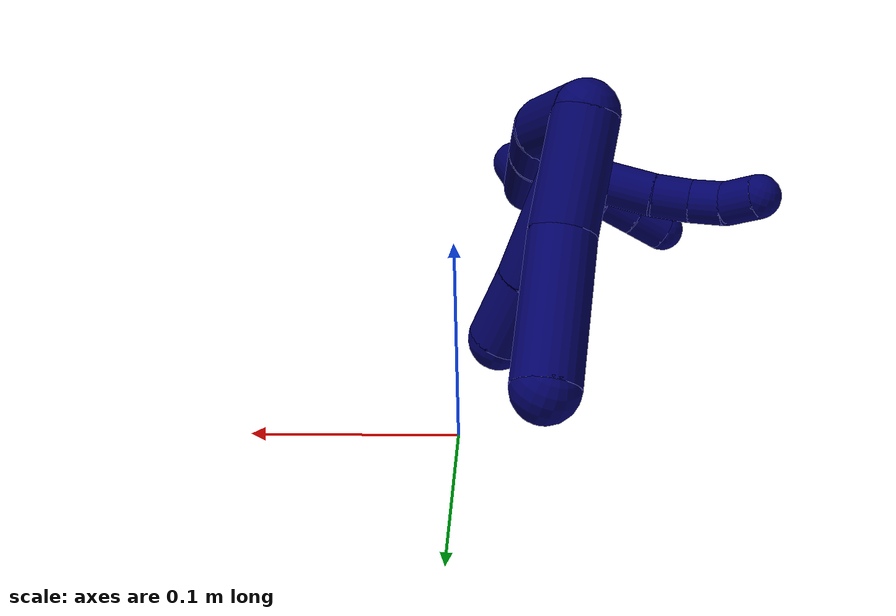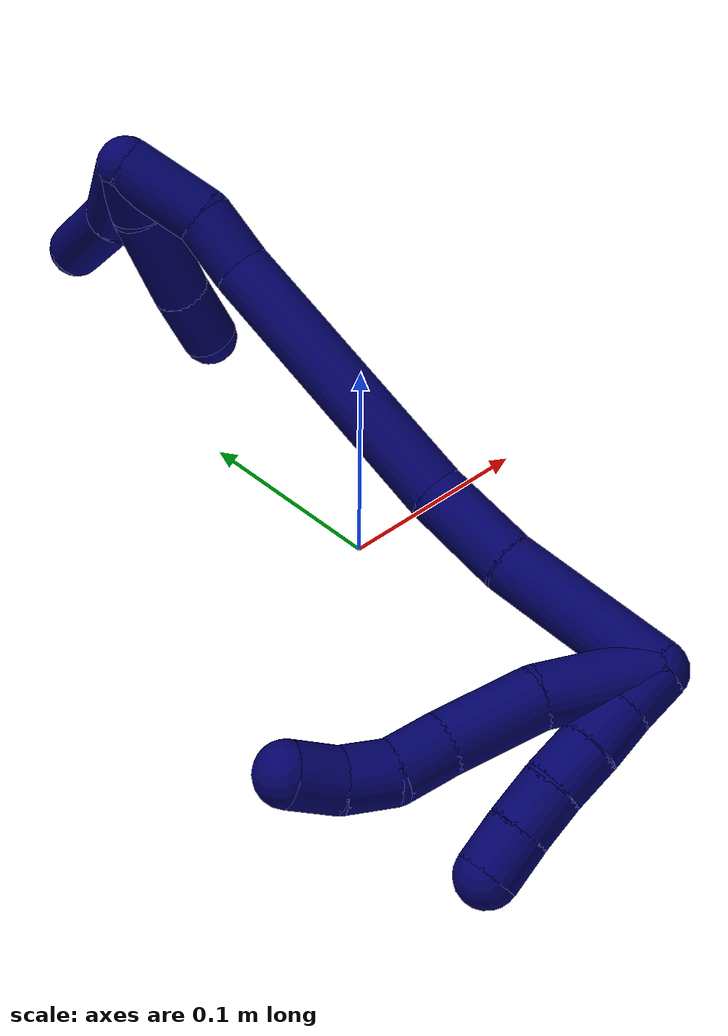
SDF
<sdf version="1.7">
 <world name="default">
  <model name="7">
   <static>0</static>
   <link name="7">
    <collision name="collision-cylinder-e_1_2_8">
     <pose>-0.02117 0.008696 0.006729 -0.912274 -1.09176 0.579322</pose>
     <geometry><cylinder><radius>0.0125</radius><length>0.04771</length></cylinder></geometry>
     <surface>
      <friction><ode><mu>1.16</mu><mu2>1.16</mu2><slip1>0</slip1><slip2>0</slip2></ode></friction>
      <contact><ode><kp>1e+06</kp><kd>1</kd><max_vel>0</max_vel><min_depth>0.001</min_depth></ode></contact>
     </surface>
    </collision>
    <visual name="visual-cylinder-e_1_2_8">
     <pose>-0.02117 0.008696 0.006729 -0.912274 -1.09176 0.579322</pose>
     <geometry><cylinder><radius>0.0125</radius><length>0.04771</length></cylinder></geometry>
     <material><ambient>0.003922 0 0.403922 1</ambient></material>
    </visual>
    <collision name="collision-cylinder-e_2_8_9">
     <pose>-0.061431 0.021202 0.016547 -0.889385 -1.3193 0.708001</pose>
     <geometry><cylinder><radius>0.0125</radius><length>0.039423</length></cylinder></geometry>
     <surface>
      <friction><ode><mu>1.16</mu><mu2>1.16</mu2><slip1>0</slip1><slip2>0</slip2></ode></friction>
      <contact><ode><kp>1e+06</kp><kd>1</kd><max_vel>0</max_vel><min_depth>0.001</min_depth></ode></contact>
     </surface>
    </collision>
    <visual name="visual-cylinder-e_2_8_9">
     <pose>-0.061431 0.021202 0.016547 -0.889385 -1.3193 0.708001</pose>
     <geometry><cylinder><radius>0.0125</radius><length>0.039423</length></cylinder></geometry>
     <material><ambient>0.003922 0 0.403922 1</ambient></material>
    </visual>
    <collision name="collision-cylinder-e_3_9_10">
     <pose>-0.091293 0.025931 0.022164 -0.348852 -1.3261 0.273533</pose>
     <geometry><cylinder><radius>0.0125</radius><length>0.022201</length></cylinder></geometry>
     <surface>
      <friction><ode><mu>1.16</mu><mu2>1.16</mu2><slip1>0</slip1><slip2>0</slip2></ode></friction>
      <contact><ode><kp>1e+06</kp><kd>1</kd><max_vel>0</max_vel><min_depth>0.001</min_depth></ode></contact>
     </surface>
    </collision>
    <visual name="visual-cylinder-e_3_9_10">
     <pose>-0.091293 0.025931 0.022164 -0.348852 -1.3261 0.273533</pose>
     <geometry><cylinder><radius>0.0125</radius><length>0.022201</length></cylinder></geometry>
     <material><ambient>0.003922 0 0.403922 1</ambient></material>
    </visual>
    <collision name="collision-cylinder-e_4_10_11">
     <pose>-0.110687 0.030445 0.028712 -0.729483 -1.01192 0.416966</pose>
     <geometry><cylinder><radius>0.0125</radius><length>0.020345</length></cylinder></geometry>
     <surface>
      <friction><ode><mu>1.16</mu><mu2>1.16</mu2><slip1>0</slip1><slip2>0</slip2></ode></friction>
      <contact><ode><kp>1e+06</kp><kd>1</kd><max_vel>0</max_vel><min_depth>0.001</min_depth></ode></contact>
     </surface>
    </collision>
    <visual name="visual-cylinder-e_4_10_11">
     <pose>-0.110687 0.030445 0.028712 -0.729483 -1.01192 0.416966</pose>
     <geometry><cylinder><radius>0.0125</radius><length>0.020345</length></cylinder></geometry>
     <material><ambient>0.003922 0 0.403922 1</ambient></material>
    </visual>
    <collision name="collision-cylinder-e_5_11_6">
     <pose>-0.126093 0.037865 0.039262 -0.529925 -0.73069 0.206846</pose>
     <geometry><cylinder><radius>0.0125</radius><length>0.020321</length></cylinder></geometry>
     <surface>
      <friction><ode><mu>1.16</mu><mu2>1.16</mu2><slip1>0</slip1><slip2>0</slip2></ode></friction>
      <contact><ode><kp>1e+06</kp><kd>1</kd><max_vel>0</max_vel><min_depth>0.001</min_depth></ode></contact>
     </surface>
    </collision>
    <visual name="visual-cylinder-e_5_11_6">
     <pose>-0.126093 0.037865 0.039262 -0.529925 -0.73069 0.206846</pose>
     <geometry><cylinder><radius>0.0125</radius><length>0.020321</length></cylinder></geometry>
     <material><ambient>0.003922 0 0.403922 1</ambient></material>
    </visual>
    <collision name="collision-cylinder-e_1_2_12">
     <pose>-0.009967 -0.000578 -0.000573 2.35192 -1.48934 -2.29236</pose>
     <geometry><cylinder><radius>0.0125</radius><length>0.02</length></cylinder></geometry>
     <surface>
      <friction><ode><mu>1.16</mu><mu2>1.16</mu2><slip1>0</slip1><slip2>0</slip2></ode></friction>
      <contact><ode><kp>1e+06</kp><kd>1</kd><max_vel>0</max_vel><min_depth>0.001</min_depth></ode></contact>
     </surface>
    </collision>
    <visual name="visual-cylinder-e_1_2_12">
     <pose>-0.009967 -0.000578 -0.000573 2.35192 -1.48934 -2.29236</pose>
     <geometry><cylinder><radius>0.0125</radius><length>0.02</length></cylinder></geometry>
     <material><ambient>0.003922 0 0.403922 1</ambient></material>
    </visual>
    <collision name="collision-cylinder-e_2_12_13">
     <pose>-0.029836 -0.002434 -0.001696 1.9772 -1.43113 -1.84523</pose>
     <geometry><cylinder><radius>0.0125</radius><length>0.02</length></cylinder></geometry>
     <surface>
      <friction><ode><mu>1.16</mu><mu2>1.16</mu2><slip1>0</slip1><slip2>0</slip2></ode></friction>
      <contact><ode><kp>1e+06</kp><kd>1</kd><max_vel>0</max_vel><min_depth>0.001</min_depth></ode></contact>
     </surface>
    </collision>
    <visual name="visual-cylinder-e_2_12_13">
     <pose>-0.029836 -0.002434 -0.001696 1.9772 -1.43113 -1.84523</pose>
     <geometry><cylinder><radius>0.0125</radius><length>0.02</length></cylinder></geometry>
     <material><ambient>0.003922 0 0.403922 1</ambient></material>
    </visual>
    <collision name="collision-cylinder-e_3_13_14">
     <pose>-0.049689 -0.004329 -0.003029 2.47501 -1.47104 -2.41078</pose>
     <geometry><cylinder><radius>0.0125</radius><length>0.02</length></cylinder></geometry>
     <surface>
      <friction><ode><mu>1.16</mu><mu2>1.16</mu2><slip1>0</slip1><slip2>0</slip2></ode></friction>
      <contact><ode><kp>1e+06</kp><kd>1</kd><max_vel>0</max_vel><min_depth>0.001</min_depth></ode></contact>
     </surface>
    </collision>
    <visual name="visual-cylinder-e_3_13_14">
     <pose>-0.049689 -0.004329 -0.003029 2.47501 -1.47104 -2.41078</pose>
     <geometry><cylinder><radius>0.0125</radius><length>0.02</length></cylinder></geometry>
     <material><ambient>0.003922 0 0.403922 1</ambient></material>
    </visual>
    <collision name="collision-cylinder-e_4_14_15">
     <pose>-0.069413 -0.005696 -0.00579 2.77874 -1.35757 -2.69437</pose>
     <geometry><cylinder><radius>0.0125</radius><length>0.02</length></cylinder></geometry>
     <surface>
      <friction><ode><mu>1.16</mu><mu2>1.16</mu2><slip1>0</slip1><slip2>0</slip2></ode></friction>
      <contact><ode><kp>1e+06</kp><kd>1</kd><max_vel>0</max_vel><min_depth>0.001</min_depth></ode></contact>
     </surface>
    </collision>
    <visual name="visual-cylinder-e_4_14_15">
     <pose>-0.069413 -0.005696 -0.00579 2.77874 -1.35757 -2.69437</pose>
     <geometry><cylinder><radius>0.0125</radius><length>0.02</length></cylinder></geometry>
     <material><ambient>0.003922 0 0.403922 1</ambient></material>
    </visual>
    <collision name="collision-cylinder-e_5_15_5">
     <pose>-0.088869 -0.007709 -0.009925 2.61213 -1.31825 -2.46837</pose>
     <geometry><cylinder><radius>0.0125</radius><length>0.02</length></cylinder></geometry>
     <surface>
      <friction><ode><mu>1.16</mu><mu2>1.16</mu2><slip1>0</slip1><slip2>0</slip2></ode></friction>
      <contact><ode><kp>1e+06</kp><kd>1</kd><max_vel>0</max_vel><min_depth>0.001</min_depth></ode></contact>
     </surface>
    </collision>
    <visual name="visual-cylinder-e_5_15_5">
     <pose>-0.088869 -0.007709 -0.009925 2.61213 -1.31825 -2.46837</pose>
     <geometry><cylinder><radius>0.0125</radius><length>0.02</length></cylinder></geometry>
     <material><ambient>0.003922 0 0.403922 1</ambient></material>
    </visual>
    <collision name="collision-cylinder-e_1_2_16">
     <pose>-0.004584 0.033637 0.009913 -1.2842 -0.129994 0.097272</pose>
     <geometry><cylinder><radius>0.0125</radius><length>0.070731</length></cylinder></geometry>
     <surface>
      <friction><ode><mu>1.16</mu><mu2>1.16</mu2><slip1>0</slip1><slip2>0</slip2></ode></friction>
      <contact><ode><kp>1e+06</kp><kd>1</kd><max_vel>0</max_vel><min_depth>0.001</min_depth></ode></contact>
     </surface>
    </collision>
    <visual name="visual-cylinder-e_1_2_16">
     <pose>-0.004584 0.033637 0.009913 -1.2842 -0.129994 0.097272</pose>
     <geometry><cylinder><radius>0.0125</radius><length>0.070731</length></cylinder></geometry>
     <material><ambient>0.003922 0 0.403922 1</ambient></material>
    </visual>
    <collision name="collision-cylinder-e_2_16_17">
     <pose>-0.009219 0.086887 0.026088 -1.26175 -0.002418 0.001766</pose>
     <geometry><cylinder><radius>0.0125</radius><length>0.041177</length></cylinder></geometry>
     <surface>
      <friction><ode><mu>1.16</mu><mu2>1.16</mu2><slip1>0</slip1><slip2>0</slip2></ode></friction>
      <contact><ode><kp>1e+06</kp><kd>1</kd><max_vel>0</max_vel><min_depth>0.001</min_depth></ode></contact>
     </surface>
    </collision>
    <visual name="visual-cylinder-e_2_16_17">
     <pose>-0.009219 0.086887 0.026088 -1.26175 -0.002418 0.001766</pose>
     <geometry><cylinder><radius>0.0125</radius><length>0.041177</length></cylinder></geometry>
     <material><ambient>0.003922 0 0.403922 1</ambient></material>
    </visual>
    <collision name="collision-cylinder-e_3_17_18">
     <pose>-0.007382 0.160456 0.06201 -1.06818 0.03063 -0.018116</pose>
     <geometry><cylinder><radius>0.0125</radius><length>0.123198</length></cylinder></geometry>
     <surface>
      <friction><ode><mu>1.16</mu><mu2>1.16</mu2><slip1>0</slip1><slip2>0</slip2></ode></friction>
      <contact><ode><kp>1e+06</kp><kd>1</kd><max_vel>0</max_vel><min_depth>0.001</min_depth></ode></contact>
     </surface>
    </collision>
    <visual name="visual-cylinder-e_3_17_18">
     <pose>-0.007382 0.160456 0.06201 -1.06818 0.03063 -0.018116</pose>
     <geometry><cylinder><radius>0.0125</radius><length>0.123198</length></cylinder></geometry>
     <material><ambient>0.003922 0 0.403922 1</ambient></material>
    </visual>
    <collision name="collision-cylinder-e_4_18_19">
     <pose>-0.00479 0.224624 0.100328 -0.867586 0.052631 -0.024384</pose>
     <geometry><cylinder><radius>0.0125</radius><length>0.026815</length></cylinder></geometry>
     <surface>
      <friction><ode><mu>1.16</mu><mu2>1.16</mu2><slip1>0</slip1><slip2>0</slip2></ode></friction>
      <contact><ode><kp>1e+06</kp><kd>1</kd><max_vel>0</max_vel><min_depth>0.001</min_depth></ode></contact>
     </surface>
    </collision>
    <visual name="visual-cylinder-e_4_18_19">
     <pose>-0.00479 0.224624 0.100328 -0.867586 0.052631 -0.024384</pose>
     <geometry><cylinder><radius>0.0125</radius><length>0.026815</length></cylinder></geometry>
     <material><ambient>0.003922 0 0.403922 1</ambient></material>
    </visual>
    <collision name="collision-cylinder-e_5_19_1">
     <pose>-0.009368 0.24984 0.119448 -0.961893 -0.281188 0.147435</pose>
     <geometry><cylinder><radius>0.0125</radius><length>0.038079</length></cylinder></geometry>
     <surface>
      <friction><ode><mu>1.16</mu><mu2>1.16</mu2><slip1>0</slip1><slip2>0</slip2></ode></friction>
      <contact><ode><kp>1e+06</kp><kd>1</kd><max_vel>0</max_vel><min_depth>0.001</min_depth></ode></contact>
     </surface>
    </collision>
    <visual name="visual-cylinder-e_5_19_1">
     <pose>-0.009368 0.24984 0.119448 -0.961893 -0.281188 0.147435</pose>
     <geometry><cylinder><radius>0.0125</radius><length>0.038079</length></cylinder></geometry>
     <material><ambient>0.003922 0 0.403922 1</ambient></material>
    </visual>
    <collision name="collision-cylinder-e_1_1_20">
     <pose>-0.017561 0.277306 0.11205 -2.53239 -0.132801 0.416888</pose>
     <geometry><cylinder><radius>0.0125</radius><length>0.043943</length></cylinder></geometry>
     <surface>
      <friction><ode><mu>1.16</mu><mu2>1.16</mu2><slip1>0</slip1><slip2>0</slip2></ode></friction>
      <contact><ode><kp>1e+06</kp><kd>1</kd><max_vel>0</max_vel><min_depth>0.001</min_depth></ode></contact>
     </surface>
    </collision>
    <visual name="visual-cylinder-e_1_1_20">
     <pose>-0.017561 0.277306 0.11205 -2.53239 -0.132801 0.416888</pose>
     <geometry><cylinder><radius>0.0125</radius><length>0.043943</length></cylinder></geometry>
     <material><ambient>0.003922 0 0.403922 1</ambient></material>
    </visual>
    <collision name="collision-cylinder-e_2_20_4">
     <pose>-0.025506 0.31072 0.076266 -2.27845 -0.180673 0.388432</pose>
     <geometry><cylinder><radius>0.0125</radius><length>0.056057</length></cylinder></geometry>
     <surface>
      <friction><ode><mu>1.16</mu><mu2>1.16</mu2><slip1>0</slip1><slip2>0</slip2></ode></friction>
      <contact><ode><kp>1e+06</kp><kd>1</kd><max_vel>0</max_vel><min_depth>0.001</min_depth></ode></contact>
     </surface>
    </collision>
    <visual name="visual-cylinder-e_2_20_4">
     <pose>-0.025506 0.31072 0.076266 -2.27845 -0.180673 0.388432</pose>
     <geometry><cylinder><radius>0.0125</radius><length>0.056057</length></cylinder></geometry>
     <material><ambient>0.003922 0 0.403922 1</ambient></material>
    </visual>
    <collision name="collision-cylinder-e_1_1_21">
     <pose>-0.016425 0.264347 0.1188 3.09682 -0.158117 -2.59077</pose>
     <geometry><cylinder><radius>0.0125</radius><length>0.022525</length></cylinder></geometry>
     <surface>
      <friction><ode><mu>1.16</mu><mu2>1.16</mu2><slip1>0</slip1><slip2>0</slip2></ode></friction>
      <contact><ode><kp>1e+06</kp><kd>1</kd><max_vel>0</max_vel><min_depth>0.001</min_depth></ode></contact>
     </surface>
    </collision>
    <visual name="visual-cylinder-e_1_1_21">
     <pose>-0.016425 0.264347 0.1188 3.09682 -0.158117 -2.59077</pose>
     <geometry><cylinder><radius>0.0125</radius><length>0.022525</length></cylinder></geometry>
     <material><ambient>0.003922 0 0.403922 1</ambient></material>
    </visual>
    <collision name="collision-cylinder-e_2_21_22">
     <pose>-0.017521 0.263416 0.084062 3.12327 0.028652 2.00353</pose>
     <geometry><cylinder><radius>0.0125</radius><length>0.047281</length></cylinder></geometry>
     <surface>
      <friction><ode><mu>1.16</mu><mu2>1.16</mu2><slip1>0</slip1><slip2>0</slip2></ode></friction>
      <contact><ode><kp>1e+06</kp><kd>1</kd><max_vel>0</max_vel><min_depth>0.001</min_depth></ode></contact>
     </surface>
    </collision>
    <visual name="visual-cylinder-e_2_21_22">
     <pose>-0.017521 0.263416 0.084062 3.12327 0.028652 2.00353</pose>
     <geometry><cylinder><radius>0.0125</radius><length>0.047281</length></cylinder></geometry>
     <material><ambient>0.003922 0 0.403922 1</ambient></material>
    </visual>
    <collision name="collision-cylinder-e_3_22_3">
     <pose>-0.015627 0.261784 0.045435 3.06184 0.08069 1.58244</pose>
     <geometry><cylinder><radius>0.0125</radius><length>0.030194</length></cylinder></geometry>
     <surface>
      <friction><ode><mu>1.16</mu><mu2>1.16</mu2><slip1>0</slip1><slip2>0</slip2></ode></friction>
      <contact><ode><kp>1e+06</kp><kd>1</kd><max_vel>0</max_vel><min_depth>0.001</min_depth></ode></contact>
     </surface>
    </collision>
    <visual name="visual-cylinder-e_3_22_3">
     <pose>-0.015627 0.261784 0.045435 3.06184 0.08069 1.58244</pose>
     <geometry><cylinder><radius>0.0125</radius><length>0.030194</length></cylinder></geometry>
     <material><ambient>0.003922 0 0.403922 1</ambient></material>
    </visual>
    <collision name="collision-sphere-3">
     <pose>-0.01441 0.260585 0.030435 0 -0 0</pose>
     <geometry><sphere><radius>0.0125</radius></sphere></geometry>
     <surface>
      <friction><ode><mu>1.16</mu><mu2>1.16</mu2><slip1>0</slip1><slip2>0</slip2></ode></friction>
      <contact><ode><kp>1e+06</kp><kd>1</kd><max_vel>0</max_vel><min_depth>0.001</min_depth></ode></contact>
     </surface>
    </collision>
    <visual name="visual-sphere-3">
     <pose>-0.01441 0.260585 0.030435 0 -0 0</pose>
     <geometry><sphere><radius>0.0125</radius></sphere></geometry>
     <material><ambient>0.003922 0 0.403922 1</ambient></material>
    </visual>
    <collision name="collision-sphere-22">
     <pose>-0.016844 0.262983 0.060435 0 -0 0</pose>
     <geometry><sphere><radius>0.0125</radius></sphere></geometry>
     <surface>
      <friction><ode><mu>1.16</mu><mu2>1.16</mu2><slip1>0</slip1><slip2>0</slip2></ode></friction>
      <contact><ode><kp>1e+06</kp><kd>1</kd><max_vel>0</max_vel><min_depth>0.001</min_depth></ode></contact>
     </surface>
    </collision>
    <visual name="visual-sphere-22">
     <pose>-0.016844 0.262983 0.060435 0 -0 0</pose>
     <geometry><sphere><radius>0.0125</radius></sphere></geometry>
     <material><ambient>0.003922 0 0.403922 1</ambient></material>
    </visual>
    <collision name="collision-sphere-21">
     <pose>-0.018198 0.263849 0.107689 0 -0 0</pose>
     <geometry><sphere><radius>0.0125</radius></sphere></geometry>
     <surface>
      <friction><ode><mu>1.16</mu><mu2>1.16</mu2><slip1>0</slip1><slip2>0</slip2></ode></friction>
      <contact><ode><kp>1e+06</kp><kd>1</kd><max_vel>0</max_vel><min_depth>0.001</min_depth></ode></contact>
     </surface>
    </collision>
    <visual name="visual-sphere-21">
     <pose>-0.018198 0.263849 0.107689 0 -0 0</pose>
     <geometry><sphere><radius>0.0125</radius></sphere></geometry>
     <material><ambient>0.003922 0 0.403922 1</ambient></material>
    </visual>
    <collision name="collision-sphere-4">
     <pose>-0.030543 0.331672 0.058343 0 -0 0</pose>
     <geometry><sphere><radius>0.0125</radius></sphere></geometry>
     <surface>
      <friction><ode><mu>1.16</mu><mu2>1.16</mu2><slip1>0</slip1><slip2>0</slip2></ode></friction>
      <contact><ode><kp>1e+06</kp><kd>1</kd><max_vel>0</max_vel><min_depth>0.001</min_depth></ode></contact>
     </surface>
    </collision>
    <visual name="visual-sphere-4">
     <pose>-0.030543 0.331672 0.058343 0 -0 0</pose>
     <geometry><sphere><radius>0.0125</radius></sphere></geometry>
     <material><ambient>0.003922 0 0.403922 1</ambient></material>
    </visual>
    <collision name="collision-sphere-20">
     <pose>-0.02047 0.289768 0.09419 0 -0 0</pose>
     <geometry><sphere><radius>0.0125</radius></sphere></geometry>
     <surface>
      <friction><ode><mu>1.16</mu><mu2>1.16</mu2><slip1>0</slip1><slip2>0</slip2></ode></friction>
      <contact><ode><kp>1e+06</kp><kd>1</kd><max_vel>0</max_vel><min_depth>0.001</min_depth></ode></contact>
     </surface>
    </collision>
    <visual name="visual-sphere-20">
     <pose>-0.02047 0.289768 0.09419 0 -0 0</pose>
     <geometry><sphere><radius>0.0125</radius></sphere></geometry>
     <material><ambient>0.003922 0 0.403922 1</ambient></material>
    </visual>
    <collision name="collision-sphere-6">
     <pose>-0.132874 0.04169 0.045791 0 -0 0</pose>
     <geometry><sphere><radius>0.0125</radius></sphere></geometry>
     <surface>
      <friction><ode><mu>1.16</mu><mu2>1.16</mu2><slip1>0</slip1><slip2>0</slip2></ode></friction>
      <contact><ode><kp>1e+06</kp><kd>1</kd><max_vel>0</max_vel><min_depth>0.001</min_depth></ode></contact>
     </surface>
    </collision>
    <visual name="visual-sphere-6">
     <pose>-0.132874 0.04169 0.045791 0 -0 0</pose>
     <geometry><sphere><radius>0.0125</radius></sphere></geometry>
     <material><ambient>0.003922 0 0.403922 1</ambient></material>
    </visual>
    <collision name="collision-sphere-11">
     <pose>-0.119312 0.03404 0.032734 0 -0 0</pose>
     <geometry><sphere><radius>0.0125</radius></sphere></geometry>
     <surface>
      <friction><ode><mu>1.16</mu><mu2>1.16</mu2><slip1>0</slip1><slip2>0</slip2></ode></friction>
      <contact><ode><kp>1e+06</kp><kd>1</kd><max_vel>0</max_vel><min_depth>0.001</min_depth></ode></contact>
     </surface>
    </collision>
    <visual name="visual-sphere-11">
     <pose>-0.119312 0.03404 0.032734 0 -0 0</pose>
     <geometry><sphere><radius>0.0125</radius></sphere></geometry>
     <material><ambient>0.003922 0 0.403922 1</ambient></material>
    </visual>
    <collision name="collision-sphere-10">
     <pose>-0.102062 0.02685 0.024691 0 -0 0</pose>
     <geometry><sphere><radius>0.0125</radius></sphere></geometry>
     <surface>
      <friction><ode><mu>1.16</mu><mu2>1.16</mu2><slip1>0</slip1><slip2>0</slip2></ode></friction>
      <contact><ode><kp>1e+06</kp><kd>1</kd><max_vel>0</max_vel><min_depth>0.001</min_depth></ode></contact>
     </surface>
    </collision>
    <visual name="visual-sphere-10">
     <pose>-0.102062 0.02685 0.024691 0 -0 0</pose>
     <geometry><sphere><radius>0.0125</radius></sphere></geometry>
     <material><ambient>0.003922 0 0.403922 1</ambient></material>
    </visual>
    <collision name="collision-sphere-9">
     <pose>-0.080523 0.025012 0.019637 0 -0 0</pose>
     <geometry><sphere><radius>0.0125</radius></sphere></geometry>
     <surface>
      <friction><ode><mu>1.16</mu><mu2>1.16</mu2><slip1>0</slip1><slip2>0</slip2></ode></friction>
      <contact><ode><kp>1e+06</kp><kd>1</kd><max_vel>0</max_vel><min_depth>0.001</min_depth></ode></contact>
     </surface>
    </collision>
    <visual name="visual-sphere-9">
     <pose>-0.080523 0.025012 0.019637 0 -0 0</pose>
     <geometry><sphere><radius>0.0125</radius></sphere></geometry>
     <material><ambient>0.003922 0 0.403922 1</ambient></material>
    </visual>
    <collision name="collision-sphere-2">
     <geometry><sphere><radius>0.0125</radius></sphere></geometry>
     <surface>
      <friction><ode><mu>1.16</mu><mu2>1.16</mu2><slip1>0</slip1><slip2>0</slip2></ode></friction>
      <contact><ode><kp>1e+06</kp><kd>1</kd><max_vel>0</max_vel><min_depth>0.001</min_depth></ode></contact>
     </surface>
    </collision>
    <visual name="visual-sphere-2">
     <geometry><sphere><radius>0.0125</radius></sphere></geometry>
     <material><ambient>0.003922 0 0.403922 1</ambient></material>
    </visual>
    <collision name="collision-sphere-19">
     <pose>-0.004085 0.234836 0.108986 0 -0 0</pose>
     <geometry><sphere><radius>0.0125</radius></sphere></geometry>
     <surface>
      <friction><ode><mu>1.16</mu><mu2>1.16</mu2><slip1>0</slip1><slip2>0</slip2></ode></friction>
      <contact><ode><kp>1e+06</kp><kd>1</kd><max_vel>0</max_vel><min_depth>0.001</min_depth></ode></contact>
     </surface>
    </collision>
    <visual name="visual-sphere-19">
     <pose>-0.004085 0.234836 0.108986 0 -0 0</pose>
     <geometry><sphere><radius>0.0125</radius></sphere></geometry>
     <material><ambient>0.003922 0 0.403922 1</ambient></material>
    </visual>
    <collision name="collision-sphere-8">
     <pose>-0.04234 0.017392 0.013457 0 -0 0</pose>
     <geometry><sphere><radius>0.0125</radius></sphere></geometry>
     <surface>
      <friction><ode><mu>1.16</mu><mu2>1.16</mu2><slip1>0</slip1><slip2>0</slip2></ode></friction>
      <contact><ode><kp>1e+06</kp><kd>1</kd><max_vel>0</max_vel><min_depth>0.001</min_depth></ode></contact>
     </surface>
    </collision>
    <visual name="visual-sphere-8">
     <pose>-0.04234 0.017392 0.013457 0 -0 0</pose>
     <geometry><sphere><radius>0.0125</radius></sphere></geometry>
     <material><ambient>0.003922 0 0.403922 1</ambient></material>
    </visual>
    <collision name="collision-sphere-12">
     <pose>-0.019934 -0.001156 -0.001146 0 -0 0</pose>
     <geometry><sphere><radius>0.0125</radius></sphere></geometry>
     <surface>
      <friction><ode><mu>1.16</mu><mu2>1.16</mu2><slip1>0</slip1><slip2>0</slip2></ode></friction>
      <contact><ode><kp>1e+06</kp><kd>1</kd><max_vel>0</max_vel><min_depth>0.001</min_depth></ode></contact>
     </surface>
    </collision>
    <visual name="visual-sphere-12">
     <pose>-0.019934 -0.001156 -0.001146 0 -0 0</pose>
     <geometry><sphere><radius>0.0125</radius></sphere></geometry>
     <material><ambient>0.003922 0 0.403922 1</ambient></material>
    </visual>
    <collision name="collision-sphere-13">
     <pose>-0.039739 -0.003713 -0.002246 0 -0 0</pose>
     <geometry><sphere><radius>0.0125</radius></sphere></geometry>
     <surface>
      <friction><ode><mu>1.16</mu><mu2>1.16</mu2><slip1>0</slip1><slip2>0</slip2></ode></friction>
      <contact><ode><kp>1e+06</kp><kd>1</kd><max_vel>0</max_vel><min_depth>0.001</min_depth></ode></contact>
     </surface>
    </collision>
    <visual name="visual-sphere-13">
     <pose>-0.039739 -0.003713 -0.002246 0 -0 0</pose>
     <geometry><sphere><radius>0.0125</radius></sphere></geometry>
     <material><ambient>0.003922 0 0.403922 1</ambient></material>
    </visual>
    <collision name="collision-sphere-14">
     <pose>-0.05964 -0.004945 -0.003812 0 -0 0</pose>
     <geometry><sphere><radius>0.0125</radius></sphere></geometry>
     <surface>
      <friction><ode><mu>1.16</mu><mu2>1.16</mu2><slip1>0</slip1><slip2>0</slip2></ode></friction>
      <contact><ode><kp>1e+06</kp><kd>1</kd><max_vel>0</max_vel><min_depth>0.001</min_depth></ode></contact>
     </surface>
    </collision>
    <visual name="visual-sphere-14">
     <pose>-0.05964 -0.004945 -0.003812 0 -0 0</pose>
     <geometry><sphere><radius>0.0125</radius></sphere></geometry>
     <material><ambient>0.003922 0 0.403922 1</ambient></material>
    </visual>
    <collision name="collision-sphere-15">
     <pose>-0.079187 -0.006447 -0.007769 0 -0 0</pose>
     <geometry><sphere><radius>0.0125</radius></sphere></geometry>
     <surface>
      <friction><ode><mu>1.16</mu><mu2>1.16</mu2><slip1>0</slip1><slip2>0</slip2></ode></friction>
      <contact><ode><kp>1e+06</kp><kd>1</kd><max_vel>0</max_vel><min_depth>0.001</min_depth></ode></contact>
     </surface>
    </collision>
    <visual name="visual-sphere-15">
     <pose>-0.079187 -0.006447 -0.007769 0 -0 0</pose>
     <geometry><sphere><radius>0.0125</radius></sphere></geometry>
     <material><ambient>0.003922 0 0.403922 1</ambient></material>
    </visual>
    <collision name="collision-sphere-5">
     <pose>-0.098552 -0.008971 -0.012082 0 -0 0</pose>
     <geometry><sphere><radius>0.0125</radius></sphere></geometry>
     <surface>
      <friction><ode><mu>1.16</mu><mu2>1.16</mu2><slip1>0</slip1><slip2>0</slip2></ode></friction>
      <contact><ode><kp>1e+06</kp><kd>1</kd><max_vel>0</max_vel><min_depth>0.001</min_depth></ode></contact>
     </surface>
    </collision>
    <visual name="visual-sphere-5">
     <pose>-0.098552 -0.008971 -0.012082 0 -0 0</pose>
     <geometry><sphere><radius>0.0125</radius></sphere></geometry>
     <material><ambient>0.003922 0 0.403922 1</ambient></material>
    </visual>
    <collision name="collision-sphere-16">
     <pose>-0.009169 0.067274 0.019826 0 -0 0</pose>
     <geometry><sphere><radius>0.0125</radius></sphere></geometry>
     <surface>
      <friction><ode><mu>1.16</mu><mu2>1.16</mu2><slip1>0</slip1><slip2>0</slip2></ode></friction>
      <contact><ode><kp>1e+06</kp><kd>1</kd><max_vel>0</max_vel><min_depth>0.001</min_depth></ode></contact>
     </surface>
    </collision>
    <visual name="visual-sphere-16">
     <pose>-0.009169 0.067274 0.019826 0 -0 0</pose>
     <geometry><sphere><radius>0.0125</radius></sphere></geometry>
     <material><ambient>0.003922 0 0.403922 1</ambient></material>
    </visual>
    <collision name="collision-sphere-17">
     <pose>-0.009268 0.1065 0.03235 0 -0 0</pose>
     <geometry><sphere><radius>0.0125</radius></sphere></geometry>
     <surface>
      <friction><ode><mu>1.16</mu><mu2>1.16</mu2><slip1>0</slip1><slip2>0</slip2></ode></friction>
      <contact><ode><kp>1e+06</kp><kd>1</kd><max_vel>0</max_vel><min_depth>0.001</min_depth></ode></contact>
     </surface>
    </collision>
    <visual name="visual-sphere-17">
     <pose>-0.009268 0.1065 0.03235 0 -0 0</pose>
     <geometry><sphere><radius>0.0125</radius></sphere></geometry>
     <material><ambient>0.003922 0 0.403922 1</ambient></material>
    </visual>
    <collision name="collision-sphere-18">
     <pose>-0.005495 0.214411 0.091669 0 -0 0</pose>
     <geometry><sphere><radius>0.0125</radius></sphere></geometry>
     <surface>
      <friction><ode><mu>1.16</mu><mu2>1.16</mu2><slip1>0</slip1><slip2>0</slip2></ode></friction>
      <contact><ode><kp>1e+06</kp><kd>1</kd><max_vel>0</max_vel><min_depth>0.001</min_depth></ode></contact>
     </surface>
    </collision>
    <visual name="visual-sphere-18">
     <pose>-0.005495 0.214411 0.091669 0 -0 0</pose>
     <geometry><sphere><radius>0.0125</radius></sphere></geometry>
     <material><ambient>0.003922 0 0.403922 1</ambient></material>
    </visual>
    <collision name="collision-sphere-1">
     <pose>-0.014651 0.264844 0.12991 0 -0 0</pose>
     <geometry><sphere><radius>0.0125</radius></sphere></geometry>
     <surface>
      <friction><ode><mu>1.16</mu><mu2>1.16</mu2><slip1>0</slip1><slip2>0</slip2></ode></friction>
      <contact><ode><kp>1e+06</kp><kd>1</kd><max_vel>0</max_vel><min_depth>0.001</min_depth></ode></contact>
     </surface>
    </collision>
    <visual name="visual-sphere-1">
     <pose>-0.014651 0.264844 0.12991 0 -0 0</pose>
     <geometry><sphere><radius>0.0125</radius></sphere></geometry>
     <material><ambient>0.003922 0 0.403922 1</ambient></material>
    </visual>
    <inertial>
     <pose>-0.028265 0.133305 0.048403 0 -0 0</pose>
     <mass>0.75</mass>
     <inertia>
      <ixx>0.000239</ixx>
      <ixy>0</ixy>
      <ixz>0</ixz>
      <iyy>0.000168</iyy>
      <iyz>0</iyz>
      <izz>-0.000177</izz>
     </inertia>
    </inertial>
   </link>
   <pose>-0.024393 -0.18672 0.073385 -0.023356 -0.323568 -0.0898</pose>
  </model>
 </world>
</sdf>
